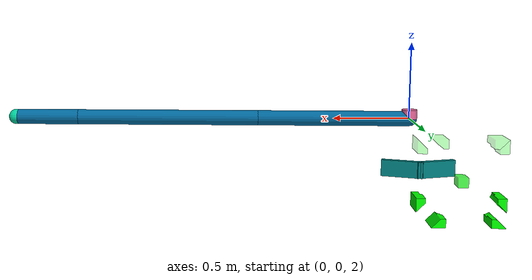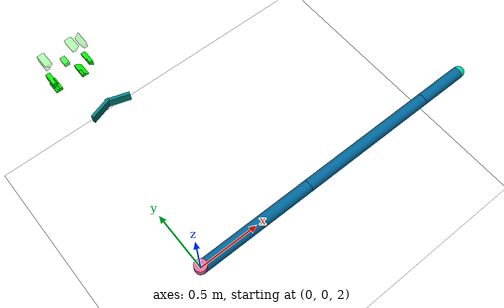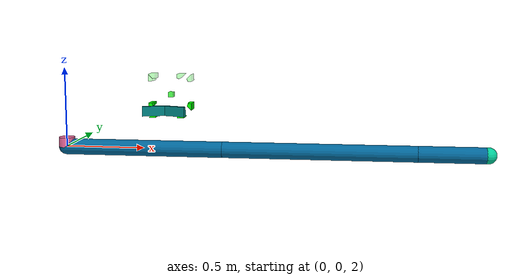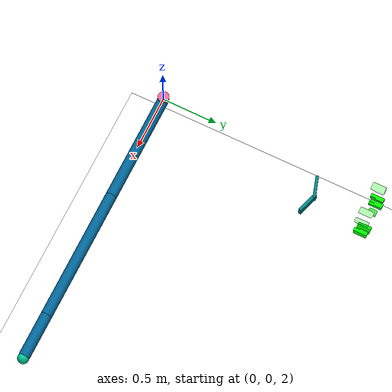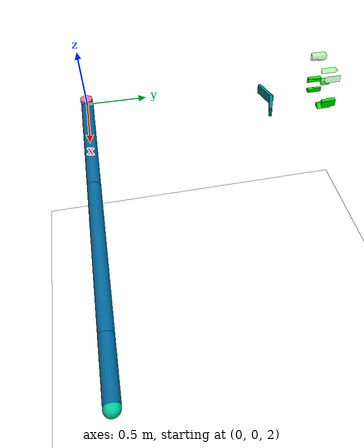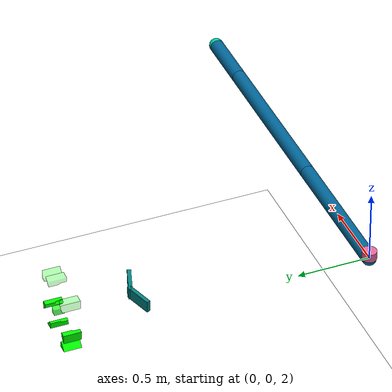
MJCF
<mujoco model="Robot">
	<compiler angle="radian" inertiafromgeom="true"
	          texturedir="textures/"
              meshdir="mesh/visual/"/>

	<asset>
		<mesh file="Part1.stl" name="bread_mesh1" scale="0.012 0.012 0.012"  />
		<mesh file="Part2.stl" name="bread_mesh2" scale="0.012 0.012 0.012"  />
		<mesh file="Part3.stl" name="bread_mesh3" scale="0.012 0.012 0.012"  />
		<mesh file="Part4.stl" name="bread_mesh4" scale="0.012 0.012 0.012"  />
		<mesh file="Part5.stl" name="bread_mesh5" scale="0.012 0.012 0.012"  />
		<mesh file="Part6.stl" name="bread_mesh6" scale="0.012 0.012 0.012"  />
		<mesh file="Part7.stl" name="bread_mesh7" scale="0.012 0.012 0.012"  />
		<mesh file="Part8.stl" name="bread_mesh8" scale="0.012 0.012 0.012"  />
		<mesh file="Part9.stl" name="bread_mesh9" scale="0.012 0.012 0.012"  />

		<!--Textures-->
		<texture type="skybox" builtin="gradient" rgb1="1 1 1" rgb2=".6 .8 1"  width="256" height="256"/>
	</asset>

	<worldbody>
		<!--Lighting parameters-->
		<light pos="0 1 1" dir="0 -1 -1" diffuse="1 1 1"/>
		<!--Floor Property-->
		<geom name="floor" pos="0 0 0" rgba="1 1 1 0.5" size="10 10 10" type="plane"/>
		<!-- Arm -->
		<geom conaffinity="0" contype="0" fromto="0 0 2 0 0 2.06" name="root" rgba="0.9 0.4 0.6 1" size=".05" type="cylinder"/>
		<body name="body0">
			<inertial pos="0.5 0 2" mass="0.01" diaginertia="1e-008 1e-008 1e-008" />
			<geom type="capsule" fromto="0 0 2  1 0 2" size="0.05" rgba=".0 .4 .6 1"/>
			<joint name='joint0' type="hinge" pos="0.0 0 2" axis="0 0 1"/>
			<body name="body1">
					<inertial pos="1.6 0 2" mass="0.01" diaginertia="1e-008 1e-008 1e-008" />
					<geom type="capsule" fromto="1 0 2  2.2 0 2" size="0.05" rgba=".0 .4 0.6 1"/>
					<joint name='joint1' type="hinge" pos="1 0 2" axis="0 0 1"/>
					<body name="body2">
					<inertial pos="2.4 0 2" mass ="0.01" diaginertia="1e-008 1e-008 1e-008" />
						<geom type="capsule" fromto="2.2 0 2  2.6 0 2" size="0.05" rgba=".0 .4 .6 1"/>
						<joint name='joint2' type="hinge" pos="2.2 0 2" axis="0 0 1"/>
						<body name="fingertip">
							<inertial pos="2.62 0 2" mass="0.01" diaginertia="1e-008 1e-008 1e-008" />
							<geom name="fingertip" pos="2.62 0 2" rgba="0.0 0.8 0.6 1" size=".05" type="sphere"/>
							<site name="fingertip" size="0.006" pos="2.6 0 2" rgba="0.0 0.8 0.6 1"/>
							!-->
						</body>
					</body>

			</body>
		</body>
		<!-- Target -->

		<body name="target" pos="0 0.0 2.00">
			<joint armature="0" axis="1 0 0" damping="0" limited="true" name="target_x" pos="0 0 0" range="-.33 .33" ref="0" stiffness="0" type="slide"/>
			<joint armature="0" axis="0 1 0" damping="0" limited="true" name="target_y" pos="0 0 0" range="-.33 .33" ref="0" stiffness="0" type="slide"/>
			<geom conaffinity="0" contype="0" name="target" pos="0 0 0" rgba="0.9 0.2 0.2 1" size=".02" type="sphere"/>
		</body>

		<body name="bread_mesh">
			<geom pos="0.25 2.1 2.25" friction="1 0.05 0.001" mesh="bread_mesh1" type="mesh" rgba="0 1 0 0.3" group="1" mass="0.0001" zaxis="0 0 -1"/>
			<geom pos="0.0 2.1 2.25" friction="1 0.05 0.001" mesh="bread_mesh2" type="mesh" rgba="0 1 0 0.3" group="1" mass="0.0001" zaxis="0 0 -1"/>
			<geom pos="0.338 2.1 2.25" friction="1 0.05 0.001" mesh="bread_mesh3" type="mesh" rgba="0 1 0 0.3" group="1" mass="0.0001" zaxis="0 0 -1"/>
			<geom pos="0.0 2.1 2.25" friction="1 0.05 0.001" mesh="bread_mesh4" type="mesh" rgba="0 1 0 0.3" group="1" mass="0.0001" zaxis="0 0 -1"/>
			<geom pos="0.25 2.1 1.911" friction="1 0.05 0.001" mesh="bread_mesh5" type="mesh" rgba="0 1 0 1" group="1" mass="0.0001" zaxis="0 0 -1"/>
			<geom pos="0.0 2.1 1.911" friction="1 0.05 0.001" mesh="bread_mesh6" type="mesh" rgba="0 1 0 1" group="1" mass="0.0001" zaxis="0 0 -1"/>
			<geom pos="0.338 2.1 2.00" friction="1 0.05 0.001" mesh="bread_mesh7" type="mesh" rgba="0 1 0 1" group="1" mass="0.0001" zaxis="0 0 -1"/>
			<geom pos="0.0 2.1 2.00" friction="1 0.05 0.001" mesh="bread_mesh8" type="mesh" rgba="0 1 0 1" group="1" mass="0.0001" zaxis="0 0 -1"/>
			<geom pos="0.162 2.1 2.088" friction="1 0.05 0.001" mesh="bread_mesh9" type="mesh" rgba="0 1 0 0.7" group="1" mass="0.0001" zaxis="0 0 -1"/>
		</body>

		<body name="spr1">
			<inertial pos="0 0 0" mass="0.005" diaginertia="1e-008 1e-008 1e-008" />
			<geom conaffinity="1" contype="1" name='spr1' type="box" pos="0.17 1.53 2" size="0.10 0.013 0.04" axisangle ="0 0 1 60" friction="0.01 0.01 0.01" rgba="0.0 .5 .5 1" group="1" />
			<joint name='spr1' type="slide" pos="0 0 0.01" axis="0.866 -0.5 0" stiffness="0.005" damping="0.001"  />
		</body>

		<body name="spr2">
			<inertial pos="0 0 0" mass="0.005" diaginertia="1e-008 1e-008 1e-008" />
			<geom conaffinity="1" contype="1" name='spr2' type="box" pos="0.33 1.53 2" size="0.10 0.013 0.04" axisangle ="0 0 -1 60" friction="0.01 0.01 0.01" rgba="0.0 .5 .5 1" group="1" />
			<joint name='spr2' type="slide" pos="0 0 0.01" axis="0.866 0.5 0" stiffness="0.005" damping="0.001"  />
		</body>

	</worldbody>
	<actuator>
		<motor ctrllimited="true" ctrlrange="-1 1" gear="20.0" joint="joint0"/>
		<motor ctrllimited="true" ctrlrange="-1 1" gear="20.0" joint="joint1"/>
		<motor ctrllimited="true" ctrlrange="-1 1" gear="20.0" joint="joint2"/>
	</actuator>

	<sensor>
		<velocimeter name="tar_vel" site="fingertip"/>
		<accelerometer  name="tar_acc" site="fingertip"/>
		<force name="tar_touch" site="fingertip"/>
		<torque name="tar_torque" site="fingertip"/>
	</sensor>
</mujoco>
